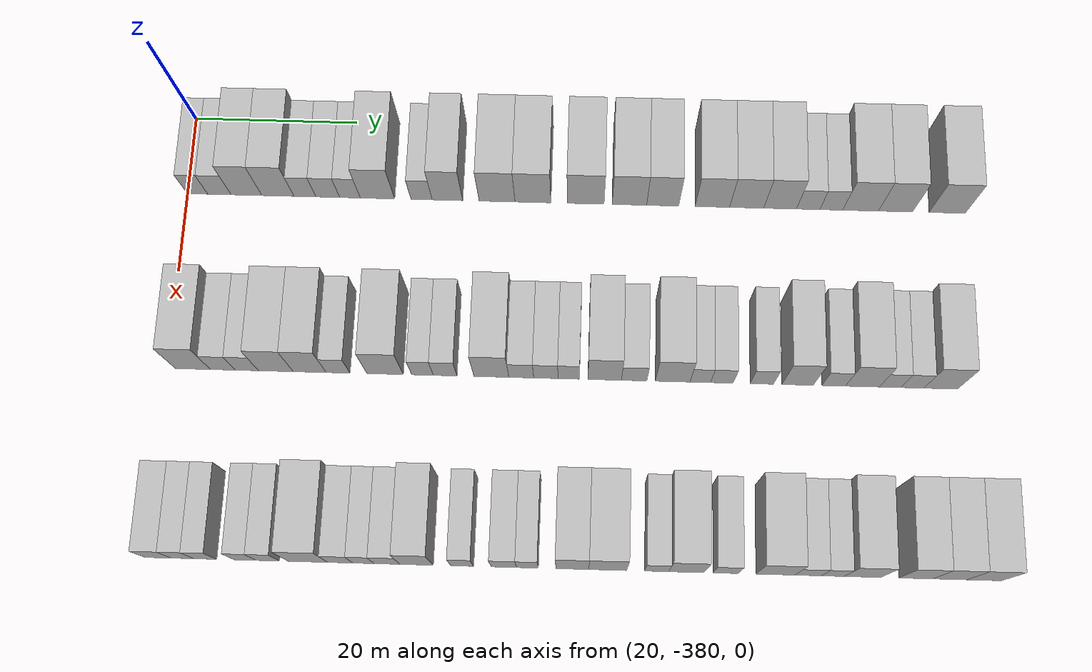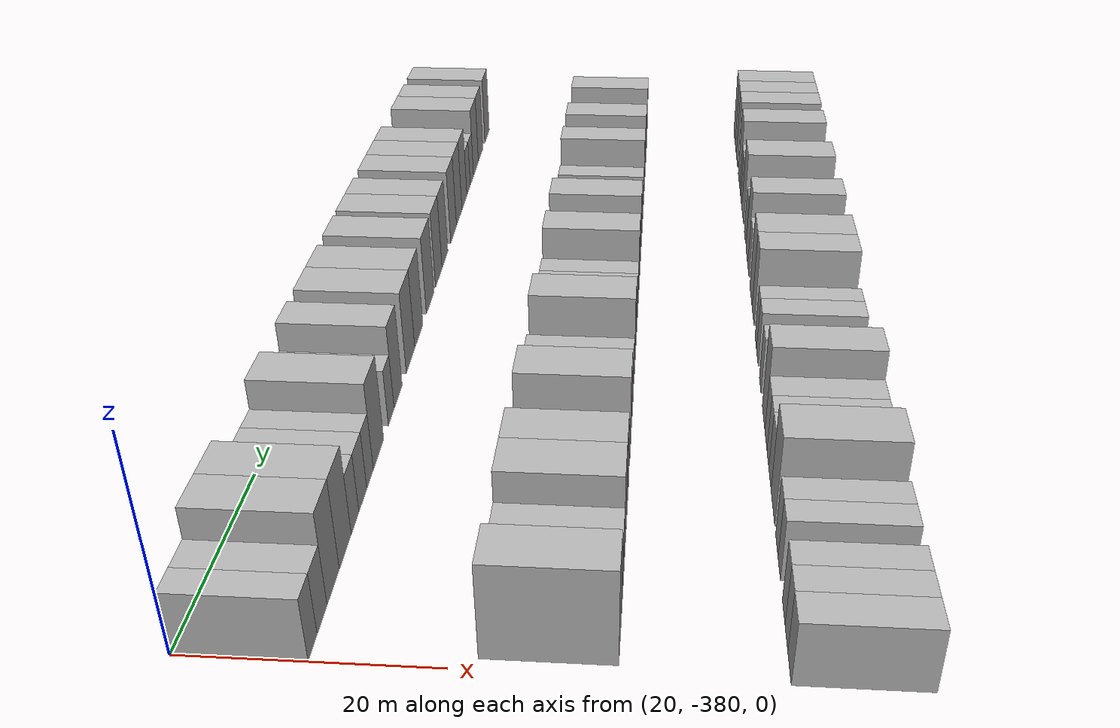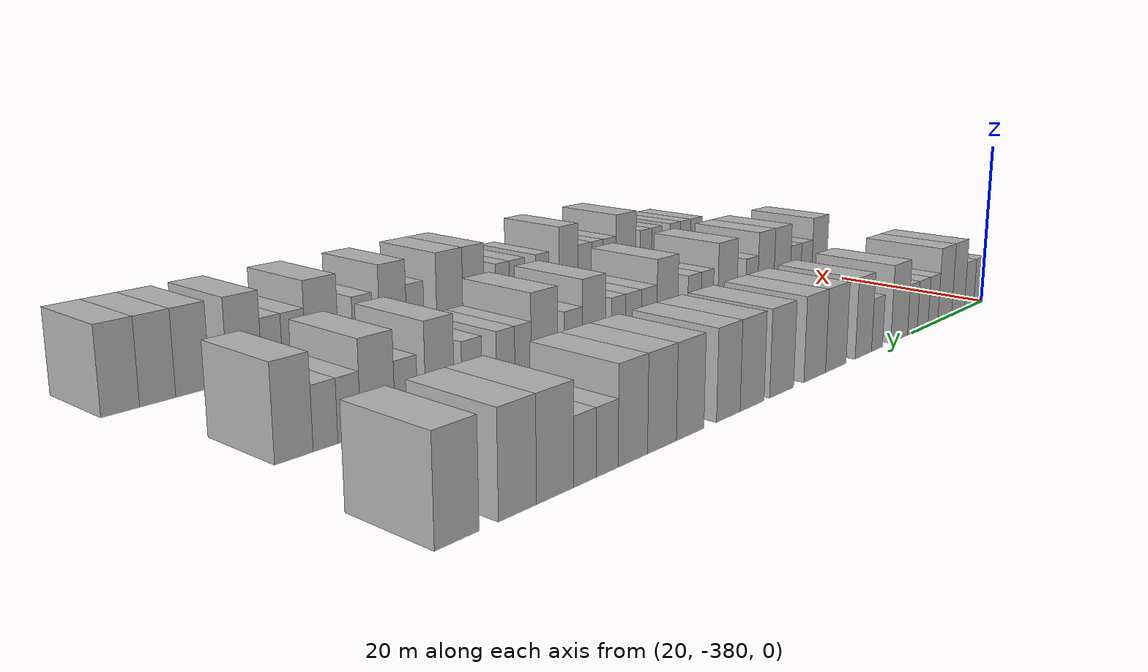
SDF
<sdf version="1.6">
 <world name="default">
  <model name="building_1">
   <static>1</static>
   <pose>25.0000 -378.7506 0 0.000000 0.000000 0.000000</pose>
   <link name="link">
    <pose>0 0 3.00 0 0 0</pose>
    <collision name="collision"><geometry><box><size>10.0000 2.4988 6.0000</size></box></geometry></collision>
    <visual name="visual">
     <cast_shadows>0</cast_shadows>
     <geometry><box><size>10.0000 2.4988 6.0000</size></box></geometry>
     <material>
      <script>
       <uri>model://HANNAS_wall/materials/scripts</uri>
       <uri>model://HANNAS_wall/materials/textures</uri>
       <name>vrc/HANNAS_wall</name>
      </script>
     </material>
    </visual>
   </link>
  </model>
  <model name="building_2">
   <static>1</static>
   <pose>25.0000 -376.0691 0 0.000000 0.000000 0.000000</pose>
   <link name="link">
    <pose>0 0 3.00 0 0 0</pose>
    <collision name="collision"><geometry><box><size>10.0000 2.8642 6.0000</size></box></geometry></collision>
    <visual name="visual">
     <cast_shadows>0</cast_shadows>
     <geometry><box><size>10.0000 2.8642 6.0000</size></box></geometry>
     <material>
      <script>
       <uri>model://HANNAS_wall/materials/scripts</uri>
       <uri>model://HANNAS_wall/materials/textures</uri>
       <name>vrc/HANNAS_wall</name>
      </script>
     </material>
    </visual>
   </link>
  </model>
  <model name="building_3">
   <static>1</static>
   <pose>25.0000 -372.7572 0 0.000000 0.000000 0.000000</pose>
   <link name="link">
    <pose>0 0 4.50 0 0 0</pose>
    <collision name="collision"><geometry><box><size>10.0000 3.7595 9.0000</size></box></geometry></collision>
    <visual name="visual">
     <cast_shadows>0</cast_shadows>
     <geometry><box><size>10.0000 3.7595 9.0000</size></box></geometry>
     <material>
      <script>
       <uri>model://HANNAS_wall/materials/scripts</uri>
       <uri>model://HANNAS_wall/materials/textures</uri>
       <name>vrc/HANNAS_wall</name>
      </script>
     </material>
    </visual>
   </link>
  </model>
  <model name="building_4">
   <static>1</static>
   <pose>25.0000 -368.9137 0 0.000000 0.000000 0.000000</pose>
   <link name="link">
    <pose>0 0 4.50 0 0 0</pose>
    <collision name="collision"><geometry><box><size>10.0000 3.9275 9.0000</size></box></geometry></collision>
    <visual name="visual">
     <cast_shadows>0</cast_shadows>
     <geometry><box><size>10.0000 3.9275 9.0000</size></box></geometry>
     <material>
      <script>
       <uri>model://HANNAS_wall/materials/scripts</uri>
       <uri>model://HANNAS_wall/materials/textures</uri>
       <name>vrc/HANNAS_wall</name>
      </script>
     </material>
    </visual>
   </link>
  </model>
  <model name="building_5">
   <static>1</static>
   <pose>25.0000 -365.6097 0 0.000000 0.000000 0.000000</pose>
   <link name="link">
    <pose>0 0 3.00 0 0 0</pose>
    <collision name="collision"><geometry><box><size>10.0000 2.6805 6.0000</size></box></geometry></collision>
    <visual name="visual">
     <cast_shadows>0</cast_shadows>
     <geometry><box><size>10.0000 2.6805 6.0000</size></box></geometry>
     <material>
      <script>
       <uri>model://HANNAS_wall/materials/scripts</uri>
       <uri>model://HANNAS_wall/materials/textures</uri>
       <name>vrc/HANNAS_wall</name>
      </script>
     </material>
    </visual>
   </link>
  </model>
  <model name="building_6">
   <static>1</static>
   <pose>25.0000 -362.8159 0 0.000000 0.000000 0.000000</pose>
   <link name="link">
    <pose>0 0 3.00 0 0 0</pose>
    <collision name="collision"><geometry><box><size>10.0000 2.9070 6.0000</size></box></geometry></collision>
    <visual name="visual">
     <cast_shadows>0</cast_shadows>
     <geometry><box><size>10.0000 2.9070 6.0000</size></box></geometry>
     <material>
      <script>
       <uri>model://HANNAS_wall/materials/scripts</uri>
       <uri>model://HANNAS_wall/materials/textures</uri>
       <name>vrc/HANNAS_wall</name>
      </script>
     </material>
    </visual>
   </link>
  </model>
  <model name="building_7">
   <static>1</static>
   <pose>25.0000 -360.1054 0 0.000000 0.000000 0.000000</pose>
   <link name="link">
    <pose>0 0 3.00 0 0 0</pose>
    <collision name="collision"><geometry><box><size>10.0000 2.5140 6.0000</size></box></geometry></collision>
    <visual name="visual">
     <cast_shadows>0</cast_shadows>
     <geometry><box><size>10.0000 2.5140 6.0000</size></box></geometry>
     <material>
      <script>
       <uri>model://HANNAS_wall/materials/scripts</uri>
       <uri>model://HANNAS_wall/materials/textures</uri>
       <name>vrc/HANNAS_wall</name>
      </script>
     </material>
    </visual>
   </link>
  </model>
  <model name="building_8">
   <static>1</static>
   <pose>25.0000 -356.7440 0 0.000000 0.000000 0.000000</pose>
   <link name="link">
    <pose>0 0 4.50 0 0 0</pose>
    <collision name="collision"><geometry><box><size>10.0000 4.2089 9.0000</size></box></geometry></collision>
    <visual name="visual">
     <cast_shadows>0</cast_shadows>
     <geometry><box><size>10.0000 4.2089 9.0000</size></box></geometry>
     <material>
      <script>
       <uri>model://HANNAS_wall/materials/scripts</uri>
       <uri>model://HANNAS_wall/materials/textures</uri>
       <name>vrc/HANNAS_wall</name>
      </script>
     </material>
    </visual>
   </link>
  </model>
  <model name="building_9">
   <static>1</static>
   <pose>25.0000 -351.3504 0 0.000000 0.000000 0.000000</pose>
   <link name="link">
    <pose>0 0 3.00 0 0 0</pose>
    <collision name="collision"><geometry><box><size>10.0000 2.5784 6.0000</size></box></geometry></collision>
    <visual name="visual">
     <cast_shadows>0</cast_shadows>
     <geometry><box><size>10.0000 2.5784 6.0000</size></box></geometry>
     <material>
      <script>
       <uri>model://HANNAS_wall/materials/scripts</uri>
       <uri>model://HANNAS_wall/materials/textures</uri>
       <name>vrc/HANNAS_wall</name>
      </script>
     </material>
    </visual>
   </link>
  </model>
  <model name="building_10">
   <static>1</static>
   <pose>25.0000 -348.1930 0 0.000000 0.000000 0.000000</pose>
   <link name="link">
    <pose>0 0 4.50 0 0 0</pose>
    <collision name="collision"><geometry><box><size>10.0000 3.7363 9.0000</size></box></geometry></collision>
    <visual name="visual">
     <cast_shadows>0</cast_shadows>
     <geometry><box><size>10.0000 3.7363 9.0000</size></box></geometry>
     <material>
      <script>
       <uri>model://HANNAS_wall/materials/scripts</uri>
       <uri>model://HANNAS_wall/materials/textures</uri>
       <name>vrc/HANNAS_wall</name>
      </script>
     </material>
    </visual>
   </link>
  </model>
  <model name="building_11">
   <static>1</static>
   <pose>25.0000 -342.1361 0 0.000000 0.000000 0.000000</pose>
   <link name="link">
    <pose>0 0 4.50 0 0 0</pose>
    <collision name="collision"><geometry><box><size>10.0000 4.3775 9.0000</size></box></geometry></collision>
    <visual name="visual">
     <cast_shadows>0</cast_shadows>
     <geometry><box><size>10.0000 4.3775 9.0000</size></box></geometry>
     <material>
      <script>
       <uri>model://HANNAS_wall/materials/scripts</uri>
       <uri>model://HANNAS_wall/materials/textures</uri>
       <name>vrc/HANNAS_wall</name>
      </script>
     </material>
    </visual>
   </link>
  </model>
  <model name="building_12">
   <static>1</static>
   <pose>25.0000 -337.7600 0 0.000000 0.000000 0.000000</pose>
   <link name="link">
    <pose>0 0 4.50 0 0 0</pose>
    <collision name="collision"><geometry><box><size>10.0000 4.3747 9.0000</size></box></geometry></collision>
    <visual name="visual">
     <cast_shadows>0</cast_shadows>
     <geometry><box><size>10.0000 4.3747 9.0000</size></box></geometry>
     <material>
      <script>
       <uri>model://HANNAS_wall/materials/scripts</uri>
       <uri>model://HANNAS_wall/materials/textures</uri>
       <name>vrc/HANNAS_wall</name>
      </script>
     </material>
    </visual>
   </link>
  </model>
  <model name="building_13">
   <static>1</static>
   <pose>25.0000 -331.3357 0 0.000000 0.000000 0.000000</pose>
   <link name="link">
    <pose>0 0 4.50 0 0 0</pose>
    <collision name="collision"><geometry><box><size>10.0000 4.4739 9.0000</size></box></geometry></collision>
    <visual name="visual">
     <cast_shadows>0</cast_shadows>
     <geometry><box><size>10.0000 4.4739 9.0000</size></box></geometry>
     <material>
      <script>
       <uri>model://HANNAS_wall/materials/scripts</uri>
       <uri>model://HANNAS_wall/materials/textures</uri>
       <name>vrc/HANNAS_wall</name>
      </script>
     </material>
    </visual>
   </link>
  </model>
  <model name="building_14">
   <static>1</static>
   <pose>25.0000 -326.0021 0 0.000000 0.000000 0.000000</pose>
   <link name="link">
    <pose>0 0 4.50 0 0 0</pose>
    <collision name="collision"><geometry><box><size>10.0000 4.1932 9.0000</size></box></geometry></collision>
    <visual name="visual">
     <cast_shadows>0</cast_shadows>
     <geometry><box><size>10.0000 4.1932 9.0000</size></box></geometry>
     <material>
      <script>
       <uri>model://HANNAS_wall/materials/scripts</uri>
       <uri>model://HANNAS_wall/materials/textures</uri>
       <name>vrc/HANNAS_wall</name>
      </script>
     </material>
    </visual>
   </link>
  </model>
  <model name="building_15">
   <static>1</static>
   <pose>25.0000 -321.9527 0 0.000000 0.000000 0.000000</pose>
   <link name="link">
    <pose>0 0 4.50 0 0 0</pose>
    <collision name="collision"><geometry><box><size>10.0000 3.9056 9.0000</size></box></geometry></collision>
    <visual name="visual">
     <cast_shadows>0</cast_shadows>
     <geometry><box><size>10.0000 3.9056 9.0000</size></box></geometry>
     <material>
      <script>
       <uri>model://HANNAS_wall/materials/scripts</uri>
       <uri>model://HANNAS_wall/materials/textures</uri>
       <name>vrc/HANNAS_wall</name>
      </script>
     </material>
    </visual>
   </link>
  </model>
  <model name="building_16">
   <static>1</static>
   <pose>25.0000 -315.9032 0 0.000000 0.000000 0.000000</pose>
   <link name="link">
    <pose>0 0 4.50 0 0 0</pose>
    <collision name="collision"><geometry><box><size>10.0000 4.1933 9.0000</size></box></geometry></collision>
    <visual name="visual">
     <cast_shadows>0</cast_shadows>
     <geometry><box><size>10.0000 4.1933 9.0000</size></box></geometry>
     <material>
      <script>
       <uri>model://HANNAS_wall/materials/scripts</uri>
       <uri>model://HANNAS_wall/materials/textures</uri>
       <name>vrc/HANNAS_wall</name>
      </script>
     </material>
    </visual>
   </link>
  </model>
  <model name="building_17">
   <static>1</static>
   <pose>25.0000 -311.7271 0 0.000000 0.000000 0.000000</pose>
   <link name="link">
    <pose>0 0 4.50 0 0 0</pose>
    <collision name="collision"><geometry><box><size>10.0000 4.1589 9.0000</size></box></geometry></collision>
    <visual name="visual">
     <cast_shadows>0</cast_shadows>
     <geometry><box><size>10.0000 4.1589 9.0000</size></box></geometry>
     <material>
      <script>
       <uri>model://HANNAS_wall/materials/scripts</uri>
       <uri>model://HANNAS_wall/materials/textures</uri>
       <name>vrc/HANNAS_wall</name>
      </script>
     </material>
    </visual>
   </link>
  </model>
  <model name="building_18">
   <static>1</static>
   <pose>25.0000 -307.6560 0 0.000000 0.000000 0.000000</pose>
   <link name="link">
    <pose>0 0 4.50 0 0 0</pose>
    <collision name="collision"><geometry><box><size>10.0000 3.9833 9.0000</size></box></geometry></collision>
    <visual name="visual">
     <cast_shadows>0</cast_shadows>
     <geometry><box><size>10.0000 3.9833 9.0000</size></box></geometry>
     <material>
      <script>
       <uri>model://HANNAS_wall/materials/scripts</uri>
       <uri>model://HANNAS_wall/materials/textures</uri>
       <name>vrc/HANNAS_wall</name>
      </script>
     </material>
    </visual>
   </link>
  </model>
  <model name="building_19">
   <static>1</static>
   <pose>25.0000 -304.2458 0 0.000000 0.000000 0.000000</pose>
   <link name="link">
    <pose>0 0 3.00 0 0 0</pose>
    <collision name="collision"><geometry><box><size>10.0000 2.8371 6.0000</size></box></geometry></collision>
    <visual name="visual">
     <cast_shadows>0</cast_shadows>
     <geometry><box><size>10.0000 2.8371 6.0000</size></box></geometry>
     <material>
      <script>
       <uri>model://HANNAS_wall/materials/scripts</uri>
       <uri>model://HANNAS_wall/materials/textures</uri>
       <name>vrc/HANNAS_wall</name>
      </script>
     </material>
    </visual>
   </link>
  </model>
  <model name="building_20">
   <static>1</static>
   <pose>25.0000 -301.4425 0 0.000000 0.000000 0.000000</pose>
   <link name="link">
    <pose>0 0 3.00 0 0 0</pose>
    <collision name="collision"><geometry><box><size>10.0000 2.7695 6.0000</size></box></geometry></collision>
    <visual name="visual">
     <cast_shadows>0</cast_shadows>
     <geometry><box><size>10.0000 2.7695 6.0000</size></box></geometry>
     <material>
      <script>
       <uri>model://HANNAS_wall/materials/scripts</uri>
       <uri>model://HANNAS_wall/materials/textures</uri>
       <name>vrc/HANNAS_wall</name>
      </script>
     </material>
    </visual>
   </link>
  </model>
  <model name="building_21">
   <static>1</static>
   <pose>25.0000 -297.8768 0 0.000000 0.000000 0.000000</pose>
   <link name="link">
    <pose>0 0 4.50 0 0 0</pose>
    <collision name="collision"><geometry><box><size>10.0000 4.3620 9.0000</size></box></geometry></collision>
    <visual name="visual">
     <cast_shadows>0</cast_shadows>
     <geometry><box><size>10.0000 4.3620 9.0000</size></box></geometry>
     <material>
      <script>
       <uri>model://HANNAS_wall/materials/scripts</uri>
       <uri>model://HANNAS_wall/materials/textures</uri>
       <name>vrc/HANNAS_wall</name>
      </script>
     </material>
    </visual>
   </link>
  </model>
  <model name="building_22">
   <static>1</static>
   <pose>25.0000 -293.6143 0 0.000000 0.000000 0.000000</pose>
   <link name="link">
    <pose>0 0 4.50 0 0 0</pose>
    <collision name="collision"><geometry><box><size>10.0000 4.1630 9.0000</size></box></geometry></collision>
    <visual name="visual">
     <cast_shadows>0</cast_shadows>
     <geometry><box><size>10.0000 4.1630 9.0000</size></box></geometry>
     <material>
      <script>
       <uri>model://HANNAS_wall/materials/scripts</uri>
       <uri>model://HANNAS_wall/materials/textures</uri>
       <name>vrc/HANNAS_wall</name>
      </script>
     </material>
    </visual>
   </link>
  </model>
  <model name="building_23">
   <static>1</static>
   <pose>25.0000 -287.3309 0 0.000000 0.000000 0.000000</pose>
   <link name="link">
    <pose>0 0 4.50 0 0 0</pose>
    <collision name="collision"><geometry><box><size>10.0000 4.4039 9.0000</size></box></geometry></collision>
    <visual name="visual">
     <cast_shadows>0</cast_shadows>
     <geometry><box><size>10.0000 4.4039 9.0000</size></box></geometry>
     <material>
      <script>
       <uri>model://HANNAS_wall/materials/scripts</uri>
       <uri>model://HANNAS_wall/materials/textures</uri>
       <name>vrc/HANNAS_wall</name>
      </script>
     </material>
    </visual>
   </link>
  </model>
  <model name="building_197">
   <static>1</static>
   <pose>47.0000 -376.9465 0 0.000000 0.000000 0.000000</pose>
   <link name="link">
    <pose>0 0 4.50 0 0 0</pose>
    <collision name="collision"><geometry><box><size>10.0000 4.1071 9.0000</size></box></geometry></collision>
    <visual name="visual">
     <cast_shadows>0</cast_shadows>
     <geometry><box><size>10.0000 4.1071 9.0000</size></box></geometry>
     <material>
      <script>
       <uri>model://HANNAS_wall/materials/scripts</uri>
       <uri>model://HANNAS_wall/materials/textures</uri>
       <name>vrc/HANNAS_wall</name>
      </script>
     </material>
    </visual>
   </link>
  </model>
  <model name="building_198">
   <static>1</static>
   <pose>47.0000 -373.4383 0 0.000000 0.000000 0.000000</pose>
   <link name="link">
    <pose>0 0 3.00 0 0 0</pose>
    <collision name="collision"><geometry><box><size>10.0000 2.9092 6.0000</size></box></geometry></collision>
    <visual name="visual">
     <cast_shadows>0</cast_shadows>
     <geometry><box><size>10.0000 2.9092 6.0000</size></box></geometry>
     <material>
      <script>
       <uri>model://HANNAS_wall/materials/scripts</uri>
       <uri>model://HANNAS_wall/materials/textures</uri>
       <name>vrc/HANNAS_wall</name>
      </script>
     </material>
    </visual>
   </link>
  </model>
  <model name="building_199">
   <static>1</static>
   <pose>47.0000 -370.6077 0 0.000000 0.000000 0.000000</pose>
   <link name="link">
    <pose>0 0 3.00 0 0 0</pose>
    <collision name="collision"><geometry><box><size>10.0000 2.7521 6.0000</size></box></geometry></collision>
    <visual name="visual">
     <cast_shadows>0</cast_shadows>
     <geometry><box><size>10.0000 2.7521 6.0000</size></box></geometry>
     <material>
      <script>
       <uri>model://HANNAS_wall/materials/scripts</uri>
       <uri>model://HANNAS_wall/materials/textures</uri>
       <name>vrc/HANNAS_wall</name>
      </script>
     </material>
    </visual>
   </link>
  </model>
  <model name="building_200">
   <static>1</static>
   <pose>47.0000 -367.1835 0 0.000000 0.000000 0.000000</pose>
   <link name="link">
    <pose>0 0 4.50 0 0 0</pose>
    <collision name="collision"><geometry><box><size>10.0000 4.0964 9.0000</size></box></geometry></collision>
    <visual name="visual">
     <cast_shadows>0</cast_shadows>
     <geometry><box><size>10.0000 4.0964 9.0000</size></box></geometry>
     <material>
      <script>
       <uri>model://HANNAS_wall/materials/scripts</uri>
       <uri>model://HANNAS_wall/materials/textures</uri>
       <name>vrc/HANNAS_wall</name>
      </script>
     </material>
    </visual>
   </link>
  </model>
  <model name="building_201">
   <static>1</static>
   <pose>47.0000 -363.1983 0 0.000000 0.000000 0.000000</pose>
   <link name="link">
    <pose>0 0 4.50 0 0 0</pose>
    <collision name="collision"><geometry><box><size>10.0000 3.8740 9.0000</size></box></geometry></collision>
    <visual name="visual">
     <cast_shadows>0</cast_shadows>
     <geometry><box><size>10.0000 3.8740 9.0000</size></box></geometry>
     <material>
      <script>
       <uri>model://HANNAS_wall/materials/scripts</uri>
       <uri>model://HANNAS_wall/materials/textures</uri>
       <name>vrc/HANNAS_wall</name>
      </script>
     </material>
    </visual>
   </link>
  </model>
  <model name="building_202">
   <static>1</static>
   <pose>47.0000 -359.8632 0 0.000000 0.000000 0.000000</pose>
   <link name="link">
    <pose>0 0 3.00 0 0 0</pose>
    <collision name="collision"><geometry><box><size>10.0000 2.7963 6.0000</size></box></geometry></collision>
    <visual name="visual">
     <cast_shadows>0</cast_shadows>
     <geometry><box><size>10.0000 2.7963 6.0000</size></box></geometry>
     <material>
      <script>
       <uri>model://HANNAS_wall/materials/scripts</uri>
       <uri>model://HANNAS_wall/materials/textures</uri>
       <name>vrc/HANNAS_wall</name>
      </script>
     </material>
    </visual>
   </link>
  </model>
  <model name="building_203">
   <static>1</static>
   <pose>47.0000 -354.3341 0 0.000000 0.000000 0.000000</pose>
   <link name="link">
    <pose>0 0 4.50 0 0 0</pose>
    <collision name="collision"><geometry><box><size>10.0000 4.2619 9.0000</size></box></geometry></collision>
    <visual name="visual">
     <cast_shadows>0</cast_shadows>
     <geometry><box><size>10.0000 4.2619 9.0000</size></box></geometry>
     <material>
      <script>
       <uri>model://HANNAS_wall/materials/scripts</uri>
       <uri>model://HANNAS_wall/materials/textures</uri>
       <name>vrc/HANNAS_wall</name>
      </script>
     </material>
    </visual>
   </link>
  </model>
  <model name="building_204">
   <static>1</static>
   <pose>47.0000 -349.9338 0 0.000000 0.000000 0.000000</pose>
   <link name="link">
    <pose>0 0 3.00 0 0 0</pose>
    <collision name="collision"><geometry><box><size>10.0000 2.5387 6.0000</size></box></geometry></collision>
    <visual name="visual">
     <cast_shadows>0</cast_shadows>
     <geometry><box><size>10.0000 2.5387 6.0000</size></box></geometry>
     <material>
      <script>
       <uri>model://HANNAS_wall/materials/scripts</uri>
       <uri>model://HANNAS_wall/materials/textures</uri>
       <name>vrc/HANNAS_wall</name>
      </script>
     </material>
    </visual>
   </link>
  </model>
  <model name="building_205">
   <static>1</static>
   <pose>47.0000 -347.2795 0 0.000000 0.000000 0.000000</pose>
   <link name="link">
    <pose>0 0 3.00 0 0 0</pose>
    <collision name="collision"><geometry><box><size>10.0000 2.7699 6.0000</size></box></geometry></collision>
    <visual name="visual">
     <cast_shadows>0</cast_shadows>
     <geometry><box><size>10.0000 2.7699 6.0000</size></box></geometry>
     <material>
      <script>
       <uri>model://HANNAS_wall/materials/scripts</uri>
       <uri>model://HANNAS_wall/materials/textures</uri>
       <name>vrc/HANNAS_wall</name>
      </script>
     </material>
    </visual>
   </link>
  </model>
  <model name="building_206">
   <static>1</static>
   <pose>47.0000 -341.8503 0 0.000000 0.000000 0.000000</pose>
   <link name="link">
    <pose>0 0 4.50 0 0 0</pose>
    <collision name="collision"><geometry><box><size>10.0000 4.0884 9.0000</size></box></geometry></collision>
    <visual name="visual">
     <cast_shadows>0</cast_shadows>
     <geometry><box><size>10.0000 4.0884 9.0000</size></box></geometry>
     <material>
      <script>
       <uri>model://HANNAS_wall/materials/scripts</uri>
       <uri>model://HANNAS_wall/materials/textures</uri>
       <name>vrc/HANNAS_wall</name>
      </script>
     </material>
    </visual>
   </link>
  </model>
  <model name="building_207">
   <static>1</static>
   <pose>47.0000 -338.3465 0 0.000000 0.000000 0.000000</pose>
   <link name="link">
    <pose>0 0 3.00 0 0 0</pose>
    <collision name="collision"><geometry><box><size>10.0000 2.9193 6.0000</size></box></geometry></collision>
    <visual name="visual">
     <cast_shadows>0</cast_shadows>
     <geometry><box><size>10.0000 2.9193 6.0000</size></box></geometry>
     <material>
      <script>
       <uri>model://HANNAS_wall/materials/scripts</uri>
       <uri>model://HANNAS_wall/materials/textures</uri>
       <name>vrc/HANNAS_wall</name>
      </script>
     </material>
    </visual>
   </link>
  </model>
  <model name="building_208">
   <static>1</static>
   <pose>47.0000 -335.4579 0 0.000000 0.000000 0.000000</pose>
   <link name="link">
    <pose>0 0 3.00 0 0 0</pose>
    <collision name="collision"><geometry><box><size>10.0000 2.8579 6.0000</size></box></geometry></collision>
    <visual name="visual">
     <cast_shadows>0</cast_shadows>
     <geometry><box><size>10.0000 2.8579 6.0000</size></box></geometry>
     <material>
      <script>
       <uri>model://HANNAS_wall/materials/scripts</uri>
       <uri>model://HANNAS_wall/materials/textures</uri>
       <name>vrc/HANNAS_wall</name>
      </script>
     </material>
    </visual>
   </link>
  </model>
  <model name="building_209">
   <static>1</static>
   <pose>47.0000 -332.7772 0 0.000000 0.000000 0.000000</pose>
   <link name="link">
    <pose>0 0 3.00 0 0 0</pose>
    <collision name="collision"><geometry><box><size>10.0000 2.5034 6.0000</size></box></geometry></collision>
    <visual name="visual">
     <cast_shadows>0</cast_shadows>
     <geometry><box><size>10.0000 2.5034 6.0000</size></box></geometry>
     <material>
      <script>
       <uri>model://HANNAS_wall/materials/scripts</uri>
       <uri>model://HANNAS_wall/materials/textures</uri>
       <name>vrc/HANNAS_wall</name>
      </script>
     </material>
    </visual>
   </link>
  </model>
  <model name="building_210">
   <static>1</static>
   <pose>47.0000 -328.5659 0 0.000000 0.000000 0.000000</pose>
   <link name="link">
    <pose>0 0 4.50 0 0 0</pose>
    <collision name="collision"><geometry><box><size>10.0000 3.9193 9.0000</size></box></geometry></collision>
    <visual name="visual">
     <cast_shadows>0</cast_shadows>
     <geometry><box><size>10.0000 3.9193 9.0000</size></box></geometry>
     <material>
      <script>
       <uri>model://HANNAS_wall/materials/scripts</uri>
       <uri>model://HANNAS_wall/materials/textures</uri>
       <name>vrc/HANNAS_wall</name>
      </script>
     </material>
    </visual>
   </link>
  </model>
  <model name="building_211">
   <static>1</static>
   <pose>47.0000 -325.1185 0 0.000000 0.000000 0.000000</pose>
   <link name="link">
    <pose>0 0 3.00 0 0 0</pose>
    <collision name="collision"><geometry><box><size>10.0000 2.9755 6.0000</size></box></geometry></collision>
    <visual name="visual">
     <cast_shadows>0</cast_shadows>
     <geometry><box><size>10.0000 2.9755 6.0000</size></box></geometry>
     <material>
      <script>
       <uri>model://HANNAS_wall/materials/scripts</uri>
       <uri>model://HANNAS_wall/materials/textures</uri>
       <name>vrc/HANNAS_wall</name>
      </script>
     </material>
    </visual>
   </link>
  </model>
  <model name="building_212">
   <static>1</static>
   <pose>47.0000 -320.6080 0 0.000000 0.000000 0.000000</pose>
   <link name="link">
    <pose>0 0 4.50 0 0 0</pose>
    <collision name="collision"><geometry><box><size>10.0000 4.0455 9.0000</size></box></geometry></collision>
    <visual name="visual">
     <cast_shadows>0</cast_shadows>
     <geometry><box><size>10.0000 4.0455 9.0000</size></box></geometry>
     <material>
      <script>
       <uri>model://HANNAS_wall/materials/scripts</uri>
       <uri>model://HANNAS_wall/materials/textures</uri>
       <name>vrc/HANNAS_wall</name>
      </script>
     </material>
    </visual>
   </link>
  </model>
  <model name="building_213">
   <static>1</static>
   <pose>47.0000 -317.3814 0 0.000000 0.000000 0.000000</pose>
   <link name="link">
    <pose>0 0 3.00 0 0 0</pose>
    <collision name="collision"><geometry><box><size>10.0000 2.4077 6.0000</size></box></geometry></collision>
    <visual name="visual">
     <cast_shadows>0</cast_shadows>
     <geometry><box><size>10.0000 2.4077 6.0000</size></box></geometry>
     <material>
      <script>
       <uri>model://HANNAS_wall/materials/scripts</uri>
       <uri>model://HANNAS_wall/materials/textures</uri>
       <name>vrc/HANNAS_wall</name>
      </script>
     </material>
    </visual>
   </link>
  </model>
  <model name="building_214">
   <static>1</static>
   <pose>47.0000 -314.8545 0 0.000000 0.000000 0.000000</pose>
   <link name="link">
    <pose>0 0 3.00 0 0 0</pose>
    <collision name="collision"><geometry><box><size>10.0000 2.6461 6.0000</size></box></geometry></collision>
    <visual name="visual">
     <cast_shadows>0</cast_shadows>
     <geometry><box><size>10.0000 2.6461 6.0000</size></box></geometry>
     <material>
      <script>
       <uri>model://HANNAS_wall/materials/scripts</uri>
       <uri>model://HANNAS_wall/materials/textures</uri>
       <name>vrc/HANNAS_wall</name>
      </script>
     </material>
    </visual>
   </link>
  </model>
  <model name="building_215">
   <static>1</static>
   <pose>47.0000 -310.1650 0 0.000000 0.000000 0.000000</pose>
   <link name="link">
    <pose>0 0 3.00 0 0 0</pose>
    <collision name="collision"><geometry><box><size>10.0000 2.7330 6.0000</size></box></geometry></collision>
    <visual name="visual">
     <cast_shadows>0</cast_shadows>
     <geometry><box><size>10.0000 2.7330 6.0000</size></box></geometry>
     <material>
      <script>
       <uri>model://HANNAS_wall/materials/scripts</uri>
       <uri>model://HANNAS_wall/materials/textures</uri>
       <name>vrc/HANNAS_wall</name>
      </script>
     </material>
    </visual>
   </link>
  </model>
  <model name="building_216">
   <static>1</static>
   <pose>47.0000 -305.9631 0 0.000000 0.000000 0.000000</pose>
   <link name="link">
    <pose>0 0 4.50 0 0 0</pose>
    <collision name="collision"><geometry><box><size>10.0000 3.6708 9.0000</size></box></geometry></collision>
    <visual name="visual">
     <cast_shadows>0</cast_shadows>
     <geometry><box><size>10.0000 3.6708 9.0000</size></box></geometry>
     <material>
      <script>
       <uri>model://HANNAS_wall/materials/scripts</uri>
       <uri>model://HANNAS_wall/materials/textures</uri>
       <name>vrc/HANNAS_wall</name>
      </script>
     </material>
    </visual>
   </link>
  </model>
  <model name="building_217">
   <static>1</static>
   <pose>47.0000 -301.7513 0 0.000000 0.000000 0.000000</pose>
   <link name="link">
    <pose>0 0 3.00 0 0 0</pose>
    <collision name="collision"><geometry><box><size>10.0000 2.7527 6.0000</size></box></geometry></collision>
    <visual name="visual">
     <cast_shadows>0</cast_shadows>
     <geometry><box><size>10.0000 2.7527 6.0000</size></box></geometry>
     <material>
      <script>
       <uri>model://HANNAS_wall/materials/scripts</uri>
       <uri>model://HANNAS_wall/materials/textures</uri>
       <name>vrc/HANNAS_wall</name>
      </script>
     </material>
    </visual>
   </link>
  </model>
  <model name="building_218">
   <static>1</static>
   <pose>47.0000 -298.3846 0 0.000000 0.000000 0.000000</pose>
   <link name="link">
    <pose>0 0 4.50 0 0 0</pose>
    <collision name="collision"><geometry><box><size>10.0000 3.9806 9.0000</size></box></geometry></collision>
    <visual name="visual">
     <cast_shadows>0</cast_shadows>
     <geometry><box><size>10.0000 3.9806 9.0000</size></box></geometry>
     <material>
      <script>
       <uri>model://HANNAS_wall/materials/scripts</uri>
       <uri>model://HANNAS_wall/materials/textures</uri>
       <name>vrc/HANNAS_wall</name>
      </script>
     </material>
    </visual>
   </link>
  </model>
  <model name="building_219">
   <static>1</static>
   <pose>47.0000 -295.1189 0 0.000000 0.000000 0.000000</pose>
   <link name="link">
    <pose>0 0 3.00 0 0 0</pose>
    <collision name="collision"><geometry><box><size>10.0000 2.5508 6.0000</size></box></geometry></collision>
    <visual name="visual">
     <cast_shadows>0</cast_shadows>
     <geometry><box><size>10.0000 2.5508 6.0000</size></box></geometry>
     <material>
      <script>
       <uri>model://HANNAS_wall/materials/scripts</uri>
       <uri>model://HANNAS_wall/materials/textures</uri>
       <name>vrc/HANNAS_wall</name>
      </script>
     </material>
    </visual>
   </link>
  </model>
  <model name="building_220">
   <static>1</static>
   <pose>47.0000 -292.5177 0 0.000000 0.000000 0.000000</pose>
   <link name="link">
    <pose>0 0 3.00 0 0 0</pose>
    <collision name="collision"><geometry><box><size>10.0000 2.6516 6.0000</size></box></geometry></collision>
    <visual name="visual">
     <cast_shadows>0</cast_shadows>
     <geometry><box><size>10.0000 2.6516 6.0000</size></box></geometry>
     <material>
      <script>
       <uri>model://HANNAS_wall/materials/scripts</uri>
       <uri>model://HANNAS_wall/materials/textures</uri>
       <name>vrc/HANNAS_wall</name>
      </script>
     </material>
    </visual>
   </link>
  </model>
  <model name="building_221">
   <static>1</static>
   <pose>47.0000 -289.2177 0 0.000000 0.000000 0.000000</pose>
   <link name="link">
    <pose>0 0 4.50 0 0 0</pose>
    <collision name="collision"><geometry><box><size>10.0000 3.9484 9.0000</size></box></geometry></collision>
    <visual name="visual">
     <cast_shadows>0</cast_shadows>
     <geometry><box><size>10.0000 3.9484 9.0000</size></box></geometry>
     <material>
      <script>
       <uri>model://HANNAS_wall/materials/scripts</uri>
       <uri>model://HANNAS_wall/materials/textures</uri>
       <name>vrc/HANNAS_wall</name>
      </script>
     </material>
    </visual>
   </link>
  </model>
  <model name="building_385">
   <static>1</static>
   <pose>69.0000 -378.5088 0 0.000000 0.000000 0.000000</pose>
   <link name="link">
    <pose>0 0 3.00 0 0 0</pose>
    <collision name="collision"><geometry><box><size>10.0000 2.9825 6.0000</size></box></geometry></collision>
    <visual name="visual">
     <cast_shadows>0</cast_shadows>
     <geometry><box><size>10.0000 2.9825 6.0000</size></box></geometry>
     <material>
      <script>
       <uri>model://HANNAS_wall/materials/scripts</uri>
       <uri>model://HANNAS_wall/materials/textures</uri>
       <name>vrc/HANNAS_wall</name>
      </script>
     </material>
    </visual>
   </link>
  </model>
  <model name="building_386">
   <static>1</static>
   <pose>69.0000 -375.7345 0 0.000000 0.000000 0.000000</pose>
   <link name="link">
    <pose>0 0 3.00 0 0 0</pose>
    <collision name="collision"><geometry><box><size>10.0000 2.5660 6.0000</size></box></geometry></collision>
    <visual name="visual">
     <cast_shadows>0</cast_shadows>
     <geometry><box><size>10.0000 2.5660 6.0000</size></box></geometry>
     <material>
      <script>
       <uri>model://HANNAS_wall/materials/scripts</uri>
       <uri>model://HANNAS_wall/materials/textures</uri>
       <name>vrc/HANNAS_wall</name>
      </script>
     </material>
    </visual>
   </link>
  </model>
  <model name="building_387">
   <static>1</static>
   <pose>69.0000 -373.1812 0 0.000000 0.000000 0.000000</pose>
   <link name="link">
    <pose>0 0 3.00 0 0 0</pose>
    <collision name="collision"><geometry><box><size>10.0000 2.5406 6.0000</size></box></geometry></collision>
    <visual name="visual">
     <cast_shadows>0</cast_shadows>
     <geometry><box><size>10.0000 2.5406 6.0000</size></box></geometry>
     <material>
      <script>
       <uri>model://HANNAS_wall/materials/scripts</uri>
       <uri>model://HANNAS_wall/materials/textures</uri>
       <name>vrc/HANNAS_wall</name>
      </script>
     </material>
    </visual>
   </link>
  </model>
  <model name="building_388">
   <static>1</static>
   <pose>69.0000 -368.6692 0 0.000000 0.000000 0.000000</pose>
   <link name="link">
    <pose>0 0 3.00 0 0 0</pose>
    <collision name="collision"><geometry><box><size>10.0000 2.4834 6.0000</size></box></geometry></collision>
    <visual name="visual">
     <cast_shadows>0</cast_shadows>
     <geometry><box><size>10.0000 2.4834 6.0000</size></box></geometry>
     <material>
      <script>
       <uri>model://HANNAS_wall/materials/scripts</uri>
       <uri>model://HANNAS_wall/materials/textures</uri>
       <name>vrc/HANNAS_wall</name>
      </script>
     </material>
    </visual>
   </link>
  </model>
  <model name="building_389">
   <static>1</static>
   <pose>69.0000 -366.1146 0 0.000000 0.000000 0.000000</pose>
   <link name="link">
    <pose>0 0 3.00 0 0 0</pose>
    <collision name="collision"><geometry><box><size>10.0000 2.6259 6.0000</size></box></geometry></collision>
    <visual name="visual">
     <cast_shadows>0</cast_shadows>
     <geometry><box><size>10.0000 2.6259 6.0000</size></box></geometry>
     <material>
      <script>
       <uri>model://HANNAS_wall/materials/scripts</uri>
       <uri>model://HANNAS_wall/materials/textures</uri>
       <name>vrc/HANNAS_wall</name>
      </script>
     </material>
    </visual>
   </link>
  </model>
  <model name="building_390">
   <static>1</static>
   <pose>69.0000 -361.5766 0 0.000000 0.000000 0.000000</pose>
   <link name="link">
    <pose>0 0 4.50 0 0 0</pose>
    <collision name="collision"><geometry><box><size>10.0000 4.4500 9.0000</size></box></geometry></collision>
    <visual name="visual">
     <cast_shadows>0</cast_shadows>
     <geometry><box><size>10.0000 4.4500 9.0000</size></box></geometry>
     <material>
      <script>
       <uri>model://HANNAS_wall/materials/scripts</uri>
       <uri>model://HANNAS_wall/materials/textures</uri>
       <name>vrc/HANNAS_wall</name>
      </script>
     </material>
    </visual>
   </link>
  </model>
  <model name="building_391">
   <static>1</static>
   <pose>69.0000 -357.9261 0 0.000000 0.000000 0.000000</pose>
   <link name="link">
    <pose>0 0 3.00 0 0 0</pose>
    <collision name="collision"><geometry><box><size>10.0000 2.8510 6.0000</size></box></geometry></collision>
    <visual name="visual">
     <cast_shadows>0</cast_shadows>
     <geometry><box><size>10.0000 2.8510 6.0000</size></box></geometry>
     <material>
      <script>
       <uri>model://HANNAS_wall/materials/scripts</uri>
       <uri>model://HANNAS_wall/materials/textures</uri>
       <name>vrc/HANNAS_wall</name>
      </script>
     </material>
    </visual>
   </link>
  </model>
  <model name="building_392">
   <static>1</static>
   <pose>69.0000 -355.2915 0 0.000000 0.000000 0.000000</pose>
   <link name="link">
    <pose>0 0 3.00 0 0 0</pose>
    <collision name="collision"><geometry><box><size>10.0000 2.4182 6.0000</size></box></geometry></collision>
    <visual name="visual">
     <cast_shadows>0</cast_shadows>
     <geometry><box><size>10.0000 2.4182 6.0000</size></box></geometry>
     <material>
      <script>
       <uri>model://HANNAS_wall/materials/scripts</uri>
       <uri>model://HANNAS_wall/materials/textures</uri>
       <name>vrc/HANNAS_wall</name>
      </script>
     </material>
    </visual>
   </link>
  </model>
  <model name="building_393">
   <static>1</static>
   <pose>69.0000 -352.6338 0 0.000000 0.000000 0.000000</pose>
   <link name="link">
    <pose>0 0 3.00 0 0 0</pose>
    <collision name="collision"><geometry><box><size>10.0000 2.8971 6.0000</size></box></geometry></collision>
    <visual name="visual">
     <cast_shadows>0</cast_shadows>
     <geometry><box><size>10.0000 2.8971 6.0000</size></box></geometry>
     <material>
      <script>
       <uri>model://HANNAS_wall/materials/scripts</uri>
       <uri>model://HANNAS_wall/materials/textures</uri>
       <name>vrc/HANNAS_wall</name>
      </script>
     </material>
    </visual>
   </link>
  </model>
  <model name="building_394">
   <static>1</static>
   <pose>69.0000 -349.3109 0 0.000000 0.000000 0.000000</pose>
   <link name="link">
    <pose>0 0 4.50 0 0 0</pose>
    <collision name="collision"><geometry><box><size>10.0000 3.7487 9.0000</size></box></geometry></collision>
    <visual name="visual">
     <cast_shadows>0</cast_shadows>
     <geometry><box><size>10.0000 3.7487 9.0000</size></box></geometry>
     <material>
      <script>
       <uri>model://HANNAS_wall/materials/scripts</uri>
       <uri>model://HANNAS_wall/materials/textures</uri>
       <name>vrc/HANNAS_wall</name>
      </script>
     </material>
    </visual>
   </link>
  </model>
  <model name="building_395">
   <static>1</static>
   <pose>69.0000 -344.1572 0 0.000000 0.000000 0.000000</pose>
   <link name="link">
    <pose>0 0 3.00 0 0 0</pose>
    <collision name="collision"><geometry><box><size>10.0000 2.5586 6.0000</size></box></geometry></collision>
    <visual name="visual">
     <cast_shadows>0</cast_shadows>
     <geometry><box><size>10.0000 2.5586 6.0000</size></box></geometry>
     <material>
      <script>
       <uri>model://HANNAS_wall/materials/scripts</uri>
       <uri>model://HANNAS_wall/materials/textures</uri>
       <name>vrc/HANNAS_wall</name>
      </script>
     </material>
    </visual>
   </link>
  </model>
  <model name="building_396">
   <static>1</static>
   <pose>69.0000 -339.4456 0 0.000000 0.000000 0.000000</pose>
   <link name="link">
    <pose>0 0 3.00 0 0 0</pose>
    <collision name="collision"><geometry><box><size>10.0000 2.8646 6.0000</size></box></geometry></collision>
    <visual name="visual">
     <cast_shadows>0</cast_shadows>
     <geometry><box><size>10.0000 2.8646 6.0000</size></box></geometry>
     <material>
      <script>
       <uri>model://HANNAS_wall/materials/scripts</uri>
       <uri>model://HANNAS_wall/materials/textures</uri>
       <name>vrc/HANNAS_wall</name>
      </script>
     </material>
    </visual>
   </link>
  </model>
  <model name="building_397">
   <static>1</static>
   <pose>69.0000 -336.8030 0 0.000000 0.000000 0.000000</pose>
   <link name="link">
    <pose>0 0 3.00 0 0 0</pose>
    <collision name="collision"><geometry><box><size>10.0000 2.4206 6.0000</size></box></geometry></collision>
    <visual name="visual">
     <cast_shadows>0</cast_shadows>
     <geometry><box><size>10.0000 2.4206 6.0000</size></box></geometry>
     <material>
      <script>
       <uri>model://HANNAS_wall/materials/scripts</uri>
       <uri>model://HANNAS_wall/materials/textures</uri>
       <name>vrc/HANNAS_wall</name>
      </script>
     </material>
    </visual>
   </link>
  </model>
  <model name="building_398">
   <static>1</static>
   <pose>69.0000 -331.7585 0 0.000000 0.000000 0.000000</pose>
   <link name="link">
    <pose>0 0 4.50 0 0 0</pose>
    <collision name="collision"><geometry><box><size>10.0000 3.6685 9.0000</size></box></geometry></collision>
    <visual name="visual">
     <cast_shadows>0</cast_shadows>
     <geometry><box><size>10.0000 3.6685 9.0000</size></box></geometry>
     <material>
      <script>
       <uri>model://HANNAS_wall/materials/scripts</uri>
       <uri>model://HANNAS_wall/materials/textures</uri>
       <name>vrc/HANNAS_wall</name>
      </script>
     </material>
    </visual>
   </link>
  </model>
  <model name="building_399">
   <static>1</static>
   <pose>69.0000 -327.7860 0 0.000000 0.000000 0.000000</pose>
   <link name="link">
    <pose>0 0 4.50 0 0 0</pose>
    <collision name="collision"><geometry><box><size>10.0000 4.2766 9.0000</size></box></geometry></collision>
    <visual name="visual">
     <cast_shadows>0</cast_shadows>
     <geometry><box><size>10.0000 4.2766 9.0000</size></box></geometry>
     <material>
      <script>
       <uri>model://HANNAS_wall/materials/scripts</uri>
       <uri>model://HANNAS_wall/materials/textures</uri>
       <name>vrc/HANNAS_wall</name>
      </script>
     </material>
    </visual>
   </link>
  </model>
  <model name="building_400">
   <static>1</static>
   <pose>69.0000 -322.2932 0 0.000000 0.000000 0.000000</pose>
   <link name="link">
    <pose>0 0 3.00 0 0 0</pose>
    <collision name="collision"><geometry><box><size>10.0000 2.7091 6.0000</size></box></geometry></collision>
    <visual name="visual">
     <cast_shadows>0</cast_shadows>
     <geometry><box><size>10.0000 2.7091 6.0000</size></box></geometry>
     <material>
      <script>
       <uri>model://HANNAS_wall/materials/scripts</uri>
       <uri>model://HANNAS_wall/materials/textures</uri>
       <name>vrc/HANNAS_wall</name>
      </script>
     </material>
    </visual>
   </link>
  </model>
  <model name="building_401">
   <static>1</static>
   <pose>69.0000 -318.9396 0 0.000000 0.000000 0.000000</pose>
   <link name="link">
    <pose>0 0 4.50 0 0 0</pose>
    <collision name="collision"><geometry><box><size>10.0000 3.9980 9.0000</size></box></geometry></collision>
    <visual name="visual">
     <cast_shadows>0</cast_shadows>
     <geometry><box><size>10.0000 3.9980 9.0000</size></box></geometry>
     <material>
      <script>
       <uri>model://HANNAS_wall/materials/scripts</uri>
       <uri>model://HANNAS_wall/materials/textures</uri>
       <name>vrc/HANNAS_wall</name>
      </script>
     </material>
    </visual>
   </link>
  </model>
  <model name="building_402">
   <static>1</static>
   <pose>69.0000 -314.5224 0 0.000000 0.000000 0.000000</pose>
   <link name="link">
    <pose>0 0 3.00 0 0 0</pose>
    <collision name="collision"><geometry><box><size>10.0000 2.8365 6.0000</size></box></geometry></collision>
    <visual name="visual">
     <cast_shadows>0</cast_shadows>
     <geometry><box><size>10.0000 2.8365 6.0000</size></box></geometry>
     <material>
      <script>
       <uri>model://HANNAS_wall/materials/scripts</uri>
       <uri>model://HANNAS_wall/materials/textures</uri>
       <name>vrc/HANNAS_wall</name>
      </script>
     </material>
    </visual>
   </link>
  </model>
  <model name="building_403">
   <static>1</static>
   <pose>69.0000 -308.9110 0 0.000000 0.000000 0.000000</pose>
   <link name="link">
    <pose>0 0 4.50 0 0 0</pose>
    <collision name="collision"><geometry><box><size>10.0000 4.3864 9.0000</size></box></geometry></collision>
    <visual name="visual">
     <cast_shadows>0</cast_shadows>
     <geometry><box><size>10.0000 4.3864 9.0000</size></box></geometry>
     <material>
      <script>
       <uri>model://HANNAS_wall/materials/scripts</uri>
       <uri>model://HANNAS_wall/materials/textures</uri>
       <name>vrc/HANNAS_wall</name>
      </script>
     </material>
    </visual>
   </link>
  </model>
  <model name="building_404">
   <static>1</static>
   <pose>69.0000 -305.2318 0 0.000000 0.000000 0.000000</pose>
   <link name="link">
    <pose>0 0 3.00 0 0 0</pose>
    <collision name="collision"><geometry><box><size>10.0000 2.9718 6.0000</size></box></geometry></collision>
    <visual name="visual">
     <cast_shadows>0</cast_shadows>
     <geometry><box><size>10.0000 2.9718 6.0000</size></box></geometry>
     <material>
      <script>
       <uri>model://HANNAS_wall/materials/scripts</uri>
       <uri>model://HANNAS_wall/materials/textures</uri>
       <name>vrc/HANNAS_wall</name>
      </script>
     </material>
    </visual>
   </link>
  </model>
  <model name="building_405">
   <static>1</static>
   <pose>69.0000 -302.4672 0 0.000000 0.000000 0.000000</pose>
   <link name="link">
    <pose>0 0 3.00 0 0 0</pose>
    <collision name="collision"><geometry><box><size>10.0000 2.5575 6.0000</size></box></geometry></collision>
    <visual name="visual">
     <cast_shadows>0</cast_shadows>
     <geometry><box><size>10.0000 2.5575 6.0000</size></box></geometry>
     <material>
      <script>
       <uri>model://HANNAS_wall/materials/scripts</uri>
       <uri>model://HANNAS_wall/materials/textures</uri>
       <name>vrc/HANNAS_wall</name>
      </script>
     </material>
    </visual>
   </link>
  </model>
  <model name="building_406">
   <static>1</static>
   <pose>69.0000 -299.1199 0 0.000000 0.000000 0.000000</pose>
   <link name="link">
    <pose>0 0 4.50 0 0 0</pose>
    <collision name="collision"><geometry><box><size>10.0000 4.1370 9.0000</size></box></geometry></collision>
    <visual name="visual">
     <cast_shadows>0</cast_shadows>
     <geometry><box><size>10.0000 4.1370 9.0000</size></box></geometry>
     <material>
      <script>
       <uri>model://HANNAS_wall/materials/scripts</uri>
       <uri>model://HANNAS_wall/materials/textures</uri>
       <name>vrc/HANNAS_wall</name>
      </script>
     </material>
    </visual>
   </link>
  </model>
  <model name="building_407">
   <static>1</static>
   <pose>69.0000 -293.1517 0 0.000000 0.000000 0.000000</pose>
   <link name="link">
    <pose>0 0 4.50 0 0 0</pose>
    <collision name="collision"><geometry><box><size>10.0000 3.7994 9.0000</size></box></geometry></collision>
    <visual name="visual">
     <cast_shadows>0</cast_shadows>
     <geometry><box><size>10.0000 3.7994 9.0000</size></box></geometry>
     <material>
      <script>
       <uri>model://HANNAS_wall/materials/scripts</uri>
       <uri>model://HANNAS_wall/materials/textures</uri>
       <name>vrc/HANNAS_wall</name>
      </script>
     </material>
    </visual>
   </link>
  </model>
  <model name="building_408">
   <static>1</static>
   <pose>69.0000 -289.3399 0 0.000000 0.000000 0.000000</pose>
   <link name="link">
    <pose>0 0 4.50 0 0 0</pose>
    <collision name="collision"><geometry><box><size>10.0000 3.8242 9.0000</size></box></geometry></collision>
    <visual name="visual">
     <cast_shadows>0</cast_shadows>
     <geometry><box><size>10.0000 3.8242 9.0000</size></box></geometry>
     <material>
      <script>
       <uri>model://HANNAS_wall/materials/scripts</uri>
       <uri>model://HANNAS_wall/materials/textures</uri>
       <name>vrc/HANNAS_wall</name>
      </script>
     </material>
    </visual>
   </link>
  </model>
  <model name="building_409">
   <static>1</static>
   <pose>69.0000 -285.4715 0 0.000000 0.000000 0.000000</pose>
   <link name="link">
    <pose>0 0 4.50 0 0 0</pose>
    <collision name="collision"><geometry><box><size>10.0000 3.9126 9.0000</size></box></geometry></collision>
    <visual name="visual">
     <cast_shadows>0</cast_shadows>
     <geometry><box><size>10.0000 3.9126 9.0000</size></box></geometry>
     <material>
      <script>
       <uri>model://HANNAS_wall/materials/scripts</uri>
       <uri>model://HANNAS_wall/materials/textures</uri>
       <name>vrc/HANNAS_wall</name>
      </script>
     </material>
    </visual>
   </link>
  </model>
 </world>
</sdf>
